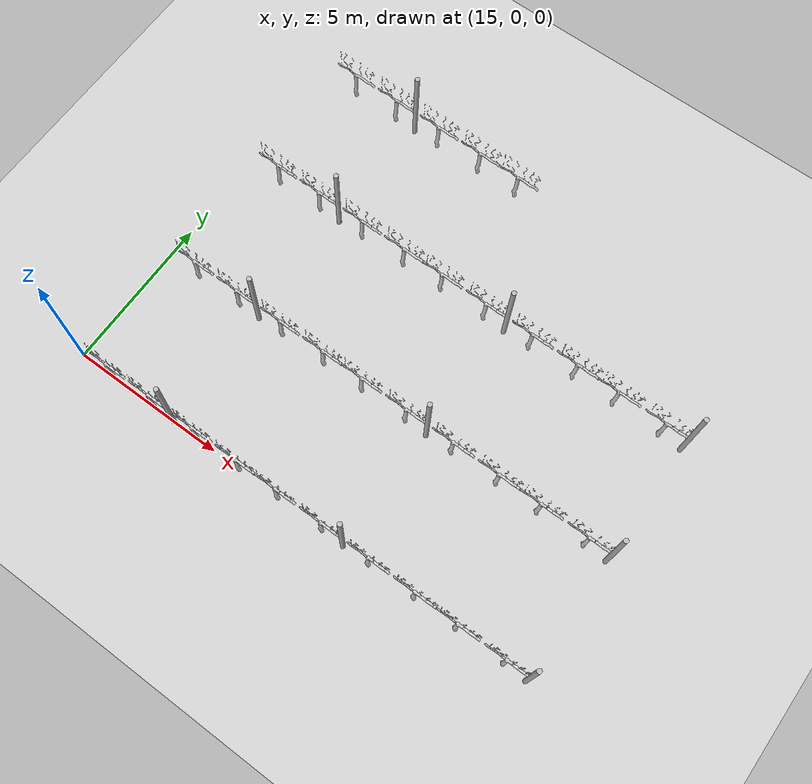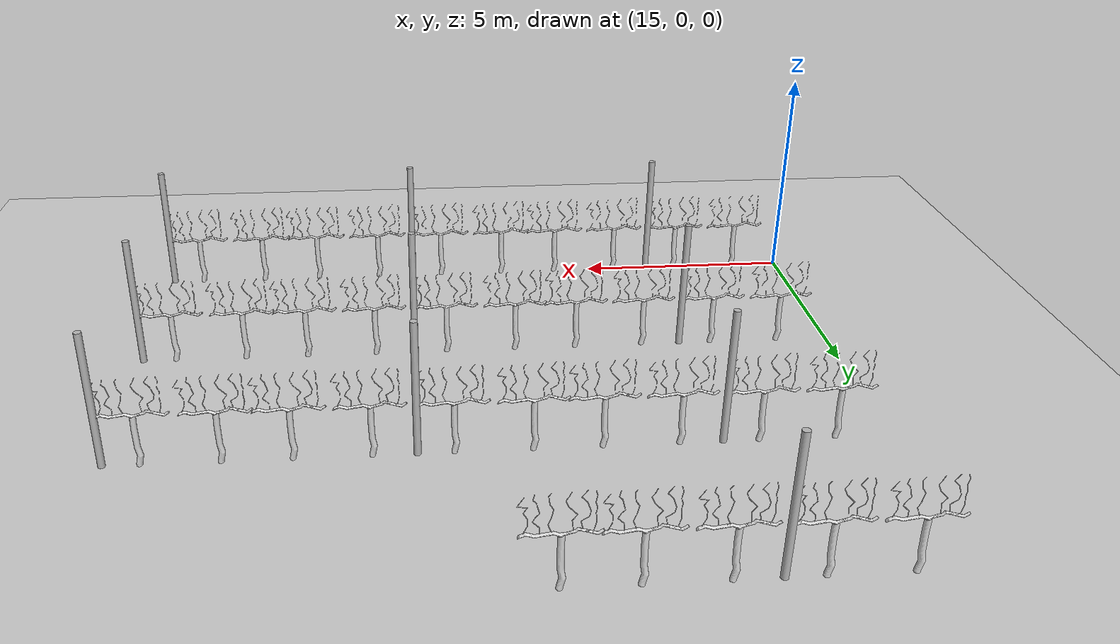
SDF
<sdf version="1.7">
 <world name="default">
  <model name="ground_plane">
   <static>true</static>
   <link name="link">
    <collision name="collision">
     <geometry><plane><normal>0 0 1</normal><size>100 100</size></plane></geometry>
    </collision>
    <visual name="visual"><geometry><plane><normal>0 0 1</normal><size>100 100</size></plane></geometry></visual>
   </link>
  </model>
  <model name="vinya_3_palo_3_fila_1">
   <static>true</static>
   <pose>16.18 0.0 0 0 0 0</pose>
   <link name="link">
    <collision name="collision">
     <geometry><mesh><uri>file://models/vinya/meshes/vinya.dae</uri></mesh></geometry>
    </collision>
    <visual name="visual">
     <geometry><mesh><uri>file://models/vinya/meshes/vinya.dae</uri></mesh></geometry>
    </visual>
   </link>
  </model>
  <model name="vinya_4_palo_3_fila_1">
   <static>true</static>
   <pose>17.755 0.0 0 0 0 0</pose>
   <link name="link">
    <collision name="collision">
     <geometry><mesh><uri>file://models/vinya/meshes/vinya.dae</uri></mesh></geometry>
    </collision>
    <visual name="visual">
     <geometry><mesh><uri>file://models/vinya/meshes/vinya.dae</uri></mesh></geometry>
    </visual>
   </link>
  </model>
  <model name="unit_cylinder_fila_1_palo_4">
   <static>true</static>
   <pose>18.48 0.0 1.5 0 0 0</pose>
   <link name="link">
    <collision name="collision">
     <geometry><cylinder><radius>0.075</radius><length>3</length></cylinder></geometry>
    </collision>
    <visual name="visual">
     <geometry><cylinder><radius>0.075</radius><length>3</length></cylinder></geometry>
    </visual>
   </link>
  </model>
  <model name="vinya_1_palo_4_fila_1">
   <static>true</static>
   <pose>19.38 0.0 0 0 0 0</pose>
   <link name="link">
    <collision name="collision">
     <geometry><mesh><uri>file://models/vinya/meshes/vinya.dae</uri></mesh></geometry>
    </collision>
    <visual name="visual">
     <geometry><mesh><uri>file://models/vinya/meshes/vinya.dae</uri></mesh></geometry>
    </visual>
   </link>
  </model>
  <model name="vinya_2_palo_4_fila_1">
   <static>true</static>
   <pose>20.939999999999998 0.0 0 0 0 0</pose>
   <link name="link">
    <collision name="collision">
     <geometry><mesh><uri>file://models/vinya/meshes/vinya.dae</uri></mesh></geometry>
    </collision>
    <visual name="visual">
     <geometry><mesh><uri>file://models/vinya/meshes/vinya.dae</uri></mesh></geometry>
    </visual>
   </link>
  </model>
  <model name="vinya_3_palo_4_fila_1">
   <static>true</static>
   <pose>22.339999999999996 0.0 0 0 0 0</pose>
   <link name="link">
    <collision name="collision">
     <geometry><mesh><uri>file://models/vinya/meshes/vinya.dae</uri></mesh></geometry>
    </collision>
    <visual name="visual">
     <geometry><mesh><uri>file://models/vinya/meshes/vinya.dae</uri></mesh></geometry>
    </visual>
   </link>
  </model>
  <model name="vinya_4_palo_4_fila_1">
   <static>true</static>
   <pose>23.914999999999996 0.0 0 0 0 0</pose>
   <link name="link">
    <collision name="collision">
     <geometry><mesh><uri>file://models/vinya/meshes/vinya.dae</uri></mesh></geometry>
    </collision>
    <visual name="visual">
     <geometry><mesh><uri>file://models/vinya/meshes/vinya.dae</uri></mesh></geometry>
    </visual>
   </link>
  </model>
  <model name="unit_cylinder_fila_1_palo_5">
   <static>true</static>
   <pose>24.639999999999997 0.0 1.5 0 0 0</pose>
   <link name="link">
    <collision name="collision">
     <geometry><cylinder><radius>0.075</radius><length>3</length></cylinder></geometry>
    </collision>
    <visual name="visual">
     <geometry><cylinder><radius>0.075</radius><length>3</length></cylinder></geometry>
    </visual>
   </link>
  </model>
  <model name="vinya_1_palo_5_fila_1">
   <static>true</static>
   <pose>25.539999999999996 0.0 0 0 0 0</pose>
   <link name="link">
    <collision name="collision">
     <geometry><mesh><uri>file://models/vinya/meshes/vinya.dae</uri></mesh></geometry>
    </collision>
    <visual name="visual">
     <geometry><mesh><uri>file://models/vinya/meshes/vinya.dae</uri></mesh></geometry>
    </visual>
   </link>
  </model>
  <model name="vinya_2_palo_5_fila_1">
   <static>true</static>
   <pose>27.099999999999994 0.0 0 0 0 0</pose>
   <link name="link">
    <collision name="collision">
     <geometry><mesh><uri>file://models/vinya/meshes/vinya.dae</uri></mesh></geometry>
    </collision>
    <visual name="visual">
     <geometry><mesh><uri>file://models/vinya/meshes/vinya.dae</uri></mesh></geometry>
    </visual>
   </link>
  </model>
  <model name="vinya_3_palo_5_fila_1">
   <static>true</static>
   <pose>28.499999999999993 0.0 0 0 0 0</pose>
   <link name="link">
    <collision name="collision">
     <geometry><mesh><uri>file://models/vinya/meshes/vinya.dae</uri></mesh></geometry>
    </collision>
    <visual name="visual">
     <geometry><mesh><uri>file://models/vinya/meshes/vinya.dae</uri></mesh></geometry>
    </visual>
   </link>
  </model>
  <model name="vinya_4_palo_5_fila_1">
   <static>true</static>
   <pose>30.074999999999992 0.0 0 0 0 0</pose>
   <link name="link">
    <collision name="collision">
     <geometry><mesh><uri>file://models/vinya/meshes/vinya.dae</uri></mesh></geometry>
    </collision>
    <visual name="visual">
     <geometry><mesh><uri>file://models/vinya/meshes/vinya.dae</uri></mesh></geometry>
    </visual>
   </link>
  </model>
  <model name="unit_cylinder_fila_1_palo_6">
   <static>true</static>
   <pose>30.799999999999994 0.0 1.5 0 0 0</pose>
   <link name="link">
    <collision name="collision">
     <geometry><cylinder><radius>0.075</radius><length>3</length></cylinder></geometry>
    </collision>
    <visual name="visual">
     <geometry><cylinder><radius>0.075</radius><length>3</length></cylinder></geometry>
    </visual>
   </link>
  </model>
  <model name="vinya_3_palo_3_fila_2">
   <static>true</static>
   <pose>16.18 4.0 0 0 0 0</pose>
   <link name="link">
    <collision name="collision">
     <geometry><mesh><uri>file://models/vinya/meshes/vinya.dae</uri></mesh></geometry>
    </collision>
    <visual name="visual">
     <geometry><mesh><uri>file://models/vinya/meshes/vinya.dae</uri></mesh></geometry>
    </visual>
   </link>
  </model>
  <model name="vinya_4_palo_3_fila_2">
   <static>true</static>
   <pose>17.755 4.0 0 0 0 0</pose>
   <link name="link">
    <collision name="collision">
     <geometry><mesh><uri>file://models/vinya/meshes/vinya.dae</uri></mesh></geometry>
    </collision>
    <visual name="visual">
     <geometry><mesh><uri>file://models/vinya/meshes/vinya.dae</uri></mesh></geometry>
    </visual>
   </link>
  </model>
  <model name="unit_cylinder_fila_2_palo_4">
   <static>true</static>
   <pose>18.48 4.0 1.5 0 0 0</pose>
   <link name="link">
    <collision name="collision">
     <geometry><cylinder><radius>0.075</radius><length>3</length></cylinder></geometry>
    </collision>
    <visual name="visual">
     <geometry><cylinder><radius>0.075</radius><length>3</length></cylinder></geometry>
    </visual>
   </link>
  </model>
  <model name="vinya_1_palo_4_fila_2">
   <static>true</static>
   <pose>19.38 4.0 0 0 0 0</pose>
   <link name="link">
    <collision name="collision">
     <geometry><mesh><uri>file://models/vinya/meshes/vinya.dae</uri></mesh></geometry>
    </collision>
    <visual name="visual">
     <geometry><mesh><uri>file://models/vinya/meshes/vinya.dae</uri></mesh></geometry>
    </visual>
   </link>
  </model>
  <model name="vinya_2_palo_4_fila_2">
   <static>true</static>
   <pose>20.939999999999998 4.0 0 0 0 0</pose>
   <link name="link">
    <collision name="collision">
     <geometry><mesh><uri>file://models/vinya/meshes/vinya.dae</uri></mesh></geometry>
    </collision>
    <visual name="visual">
     <geometry><mesh><uri>file://models/vinya/meshes/vinya.dae</uri></mesh></geometry>
    </visual>
   </link>
  </model>
  <model name="vinya_3_palo_4_fila_2">
   <static>true</static>
   <pose>22.339999999999996 4.0 0 0 0 0</pose>
   <link name="link">
    <collision name="collision">
     <geometry><mesh><uri>file://models/vinya/meshes/vinya.dae</uri></mesh></geometry>
    </collision>
    <visual name="visual">
     <geometry><mesh><uri>file://models/vinya/meshes/vinya.dae</uri></mesh></geometry>
    </visual>
   </link>
  </model>
  <model name="vinya_4_palo_4_fila_2">
   <static>true</static>
   <pose>23.914999999999996 4.0 0 0 0 0</pose>
   <link name="link">
    <collision name="collision">
     <geometry><mesh><uri>file://models/vinya/meshes/vinya.dae</uri></mesh></geometry>
    </collision>
    <visual name="visual">
     <geometry><mesh><uri>file://models/vinya/meshes/vinya.dae</uri></mesh></geometry>
    </visual>
   </link>
  </model>
  <model name="unit_cylinder_fila_2_palo_5">
   <static>true</static>
   <pose>24.639999999999997 4.0 1.5 0 0 0</pose>
   <link name="link">
    <collision name="collision">
     <geometry><cylinder><radius>0.075</radius><length>3</length></cylinder></geometry>
    </collision>
    <visual name="visual">
     <geometry><cylinder><radius>0.075</radius><length>3</length></cylinder></geometry>
    </visual>
   </link>
  </model>
  <model name="vinya_1_palo_5_fila_2">
   <static>true</static>
   <pose>25.539999999999996 4.0 0 0 0 0</pose>
   <link name="link">
    <collision name="collision">
     <geometry><mesh><uri>file://models/vinya/meshes/vinya.dae</uri></mesh></geometry>
    </collision>
    <visual name="visual">
     <geometry><mesh><uri>file://models/vinya/meshes/vinya.dae</uri></mesh></geometry>
    </visual>
   </link>
  </model>
  <model name="vinya_2_palo_5_fila_2">
   <static>true</static>
   <pose>27.099999999999994 4.0 0 0 0 0</pose>
   <link name="link">
    <collision name="collision">
     <geometry><mesh><uri>file://models/vinya/meshes/vinya.dae</uri></mesh></geometry>
    </collision>
    <visual name="visual">
     <geometry><mesh><uri>file://models/vinya/meshes/vinya.dae</uri></mesh></geometry>
    </visual>
   </link>
  </model>
  <model name="vinya_3_palo_5_fila_2">
   <static>true</static>
   <pose>28.499999999999993 4.0 0 0 0 0</pose>
   <link name="link">
    <collision name="collision">
     <geometry><mesh><uri>file://models/vinya/meshes/vinya.dae</uri></mesh></geometry>
    </collision>
    <visual name="visual">
     <geometry><mesh><uri>file://models/vinya/meshes/vinya.dae</uri></mesh></geometry>
    </visual>
   </link>
  </model>
  <model name="vinya_4_palo_5_fila_2">
   <static>true</static>
   <pose>30.074999999999992 4.0 0 0 0 0</pose>
   <link name="link">
    <collision name="collision">
     <geometry><mesh><uri>file://models/vinya/meshes/vinya.dae</uri></mesh></geometry>
    </collision>
    <visual name="visual">
     <geometry><mesh><uri>file://models/vinya/meshes/vinya.dae</uri></mesh></geometry>
    </visual>
   </link>
  </model>
  <model name="unit_cylinder_fila_2_palo_6">
   <static>true</static>
   <pose>30.799999999999994 4.0 1.5 0 0 0</pose>
   <link name="link">
    <collision name="collision">
     <geometry><cylinder><radius>0.075</radius><length>3</length></cylinder></geometry>
    </collision>
    <visual name="visual">
     <geometry><cylinder><radius>0.075</radius><length>3</length></cylinder></geometry>
    </visual>
   </link>
  </model>
  <model name="vinya_3_palo_3_fila_3">
   <static>true</static>
   <pose>16.18 8.0 0 0 0 0</pose>
   <link name="link">
    <collision name="collision">
     <geometry><mesh><uri>file://models/vinya/meshes/vinya.dae</uri></mesh></geometry>
    </collision>
    <visual name="visual">
     <geometry><mesh><uri>file://models/vinya/meshes/vinya.dae</uri></mesh></geometry>
    </visual>
   </link>
  </model>
  <model name="vinya_4_palo_3_fila_3">
   <static>true</static>
   <pose>17.755 8.0 0 0 0 0</pose>
   <link name="link">
    <collision name="collision">
     <geometry><mesh><uri>file://models/vinya/meshes/vinya.dae</uri></mesh></geometry>
    </collision>
    <visual name="visual">
     <geometry><mesh><uri>file://models/vinya/meshes/vinya.dae</uri></mesh></geometry>
    </visual>
   </link>
  </model>
  <model name="unit_cylinder_fila_3_palo_4">
   <static>true</static>
   <pose>18.48 8.0 1.5 0 0 0</pose>
   <link name="link">
    <collision name="collision">
     <geometry><cylinder><radius>0.075</radius><length>3</length></cylinder></geometry>
    </collision>
    <visual name="visual">
     <geometry><cylinder><radius>0.075</radius><length>3</length></cylinder></geometry>
    </visual>
   </link>
  </model>
  <model name="vinya_1_palo_4_fila_3">
   <static>true</static>
   <pose>19.38 8.0 0 0 0 0</pose>
   <link name="link">
    <collision name="collision">
     <geometry><mesh><uri>file://models/vinya/meshes/vinya.dae</uri></mesh></geometry>
    </collision>
    <visual name="visual">
     <geometry><mesh><uri>file://models/vinya/meshes/vinya.dae</uri></mesh></geometry>
    </visual>
   </link>
  </model>
  <model name="vinya_2_palo_4_fila_3">
   <static>true</static>
   <pose>20.939999999999998 8.0 0 0 0 0</pose>
   <link name="link">
    <collision name="collision">
     <geometry><mesh><uri>file://models/vinya/meshes/vinya.dae</uri></mesh></geometry>
    </collision>
    <visual name="visual">
     <geometry><mesh><uri>file://models/vinya/meshes/vinya.dae</uri></mesh></geometry>
    </visual>
   </link>
  </model>
  <model name="vinya_3_palo_4_fila_3">
   <static>true</static>
   <pose>22.339999999999996 8.0 0 0 0 0</pose>
   <link name="link">
    <collision name="collision">
     <geometry><mesh><uri>file://models/vinya/meshes/vinya.dae</uri></mesh></geometry>
    </collision>
    <visual name="visual">
     <geometry><mesh><uri>file://models/vinya/meshes/vinya.dae</uri></mesh></geometry>
    </visual>
   </link>
  </model>
  <model name="vinya_4_palo_4_fila_3">
   <static>true</static>
   <pose>23.914999999999996 8.0 0 0 0 0</pose>
   <link name="link">
    <collision name="collision">
     <geometry><mesh><uri>file://models/vinya/meshes/vinya.dae</uri></mesh></geometry>
    </collision>
    <visual name="visual">
     <geometry><mesh><uri>file://models/vinya/meshes/vinya.dae</uri></mesh></geometry>
    </visual>
   </link>
  </model>
  <model name="unit_cylinder_fila_3_palo_5">
   <static>true</static>
   <pose>24.639999999999997 8.0 1.5 0 0 0</pose>
   <link name="link">
    <collision name="collision">
     <geometry><cylinder><radius>0.075</radius><length>3</length></cylinder></geometry>
    </collision>
    <visual name="visual">
     <geometry><cylinder><radius>0.075</radius><length>3</length></cylinder></geometry>
    </visual>
   </link>
  </model>
  <model name="vinya_1_palo_5_fila_3">
   <static>true</static>
   <pose>25.539999999999996 8.0 0 0 0 0</pose>
   <link name="link">
    <collision name="collision">
     <geometry><mesh><uri>file://models/vinya/meshes/vinya.dae</uri></mesh></geometry>
    </collision>
    <visual name="visual">
     <geometry><mesh><uri>file://models/vinya/meshes/vinya.dae</uri></mesh></geometry>
    </visual>
   </link>
  </model>
  <model name="vinya_2_palo_5_fila_3">
   <static>true</static>
   <pose>27.099999999999994 8.0 0 0 0 0</pose>
   <link name="link">
    <collision name="collision">
     <geometry><mesh><uri>file://models/vinya/meshes/vinya.dae</uri></mesh></geometry>
    </collision>
    <visual name="visual">
     <geometry><mesh><uri>file://models/vinya/meshes/vinya.dae</uri></mesh></geometry>
    </visual>
   </link>
  </model>
  <model name="vinya_3_palo_5_fila_3">
   <static>true</static>
   <pose>28.499999999999993 8.0 0 0 0 0</pose>
   <link name="link">
    <collision name="collision">
     <geometry><mesh><uri>file://models/vinya/meshes/vinya.dae</uri></mesh></geometry>
    </collision>
    <visual name="visual">
     <geometry><mesh><uri>file://models/vinya/meshes/vinya.dae</uri></mesh></geometry>
    </visual>
   </link>
  </model>
  <model name="vinya_4_palo_5_fila_3">
   <static>true</static>
   <pose>30.074999999999992 8.0 0 0 0 0</pose>
   <link name="link">
    <collision name="collision">
     <geometry><mesh><uri>file://models/vinya/meshes/vinya.dae</uri></mesh></geometry>
    </collision>
    <visual name="visual">
     <geometry><mesh><uri>file://models/vinya/meshes/vinya.dae</uri></mesh></geometry>
    </visual>
   </link>
  </model>
  <model name="unit_cylinder_fila_3_palo_6">
   <static>true</static>
   <pose>30.799999999999994 8.0 1.5 0 0 0</pose>
   <link name="link">
    <collision name="collision">
     <geometry><cylinder><radius>0.075</radius><length>3</length></cylinder></geometry>
    </collision>
    <visual name="visual">
     <geometry><cylinder><radius>0.075</radius><length>3</length></cylinder></geometry>
    </visual>
   </link>
  </model>
  <model name="vinya_3_palo_3_fila_4">
   <static>true</static>
   <pose>16.18 12.0 0 0 0 0</pose>
   <link name="link">
    <collision name="collision">
     <geometry><mesh><uri>file://models/vinya/meshes/vinya.dae</uri></mesh></geometry>
    </collision>
    <visual name="visual">
     <geometry><mesh><uri>file://models/vinya/meshes/vinya.dae</uri></mesh></geometry>
    </visual>
   </link>
  </model>
  <model name="vinya_4_palo_3_fila_4">
   <static>true</static>
   <pose>17.755 12.0 0 0 0 0</pose>
   <link name="link">
    <collision name="collision">
     <geometry><mesh><uri>file://models/vinya/meshes/vinya.dae</uri></mesh></geometry>
    </collision>
    <visual name="visual">
     <geometry><mesh><uri>file://models/vinya/meshes/vinya.dae</uri></mesh></geometry>
    </visual>
   </link>
  </model>
  <model name="unit_cylinder_fila_4_palo_4">
   <static>true</static>
   <pose>18.48 12.0 1.5 0 0 0</pose>
   <link name="link">
    <collision name="collision">
     <geometry><cylinder><radius>0.075</radius><length>3</length></cylinder></geometry>
    </collision>
    <visual name="visual">
     <geometry><cylinder><radius>0.075</radius><length>3</length></cylinder></geometry>
    </visual>
   </link>
  </model>
  <model name="vinya_1_palo_4_fila_4">
   <static>true</static>
   <pose>19.38 12.0 0 0 0 0</pose>
   <link name="link">
    <collision name="collision">
     <geometry><mesh><uri>file://models/vinya/meshes/vinya.dae</uri></mesh></geometry>
    </collision>
    <visual name="visual">
     <geometry><mesh><uri>file://models/vinya/meshes/vinya.dae</uri></mesh></geometry>
    </visual>
   </link>
  </model>
  <model name="vinya_2_palo_4_fila_4">
   <static>true</static>
   <pose>20.939999999999998 12.0 0 0 0 0</pose>
   <link name="link">
    <collision name="collision">
     <geometry><mesh><uri>file://models/vinya/meshes/vinya.dae</uri></mesh></geometry>
    </collision>
    <visual name="visual">
     <geometry><mesh><uri>file://models/vinya/meshes/vinya.dae</uri></mesh></geometry>
    </visual>
   </link>
  </model>
  <model name="vinya_3_palo_4_fila_4">
   <static>true</static>
   <pose>22.339999999999996 12.0 0 0 0 0</pose>
   <link name="link">
    <collision name="collision">
     <geometry><mesh><uri>file://models/vinya/meshes/vinya.dae</uri></mesh></geometry>
    </collision>
    <visual name="visual">
     <geometry><mesh><uri>file://models/vinya/meshes/vinya.dae</uri></mesh></geometry>
    </visual>
   </link>
  </model>
 </world>
</sdf>
